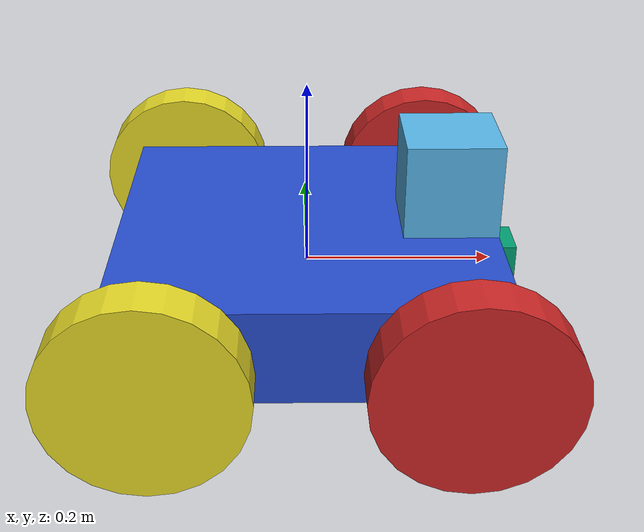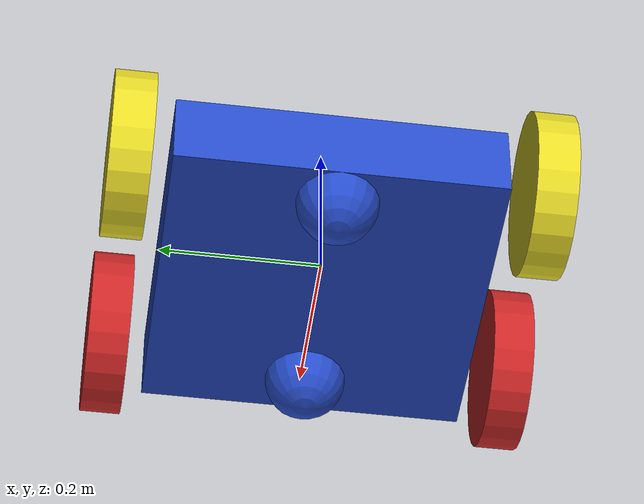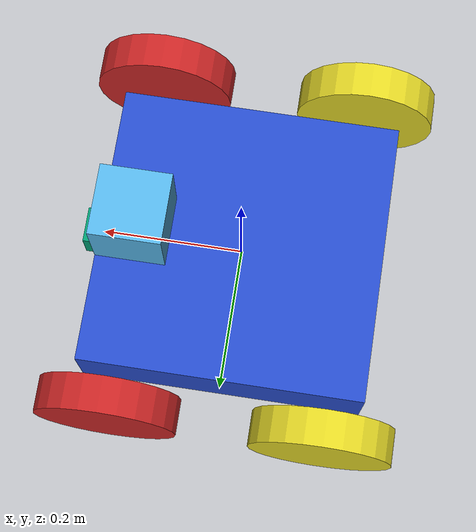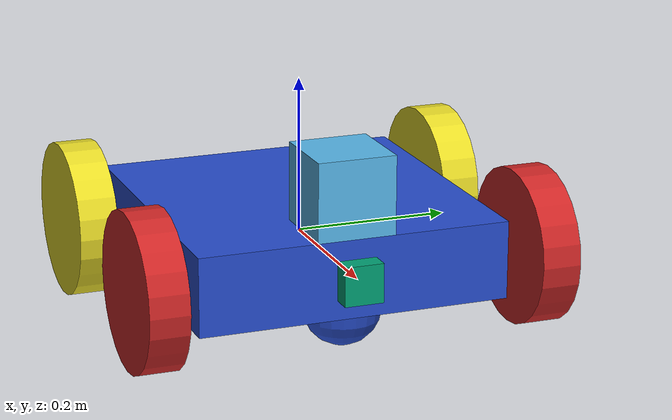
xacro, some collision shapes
<?xml version='1.0'?>

<robot name="my_robot" xmlns:xacro="http://www.ros.org/wiki/xacro">
<xacro:include filename="$(find my_robot)/urdf/my_robot.gazebo" />

  <link name="robot_footprint"></link>

  <joint name="robot_footprint_joint" type="fixed">
    <origin xyz="0 0 0" rpy="0 0 0" />
    <parent link="robot_footprint"/>
    <child link="chassis" />
  </joint>

  <joint name="camera_joint" type="fixed">
    <origin xyz="0.2 0 0" rpy="0 0 0" />
    <axis xyz="0 1 0" rpy="0 0 0"/>
    <parent link="chassis"/>
    <child link="camera" />
  </joint>

  <joint name="hokuyo_joint" type="fixed">
    <origin xyz="0.15 0 0.1" rpy="0 0 0" />
    <axis xyz="0 1 0" rpy="0 0 0"/>
    <parent link="chassis"/>
    <child link="hokuyo" />
  </joint>

  <link name='hokuyo'>
    <pose>0 0 0 0 0 0</pose>
    <inertial>
      <mass value="1e-5"/>
      <origin xyz="0 0 0" rpy=" 0 0 0"/>
      <inertia
          ixx="1e-6" ixy="0" ixz="0"
          iyy="1e-6" iyz="0"
          izz="1e-6"
      />
    </inertial>
    <collision name='collision'>
      <origin xyz="0 0 0" rpy=" 0 0 0"/>
      <geometry>
        <box size="0.1 0.1 0.1"/>
      </geometry>
    </collision>
    <visual name='visual'>
      <origin xyz="0 0 0" rpy=" 0 0 0"/>
      <geometry>
        <mesh filename="package://my_robot/meshes/hokuyo.dae"/>
      </geometry>
    </visual>
  </link>

  <link name='camera'>
    <pose>0 0 0 0 0 0</pose>
    <inertial>
      <mass value="0.1"/>
      <origin xyz="0.05 0.05 0.05" rpy=" 0 0 0"/>
      <inertia
          ixx="1e-6" ixy="0" ixz="0"
          iyy="1e-6" iyz="0"
          izz="1e-6"
      />
    </inertial>
    <collision name='collision'>
      <origin xyz="0 0 0" rpy=" 0 0 0"/>
      <geometry>
        <box size="0.05 0.05 0.05"/>
      </geometry>
    </collision>
    <visual name='visual'>
      <origin xyz="0 0 0" rpy=" 0 0 0"/>
      <geometry>
        <box size="0.05 0.05 0.05"/>
      </geometry>
    </visual>
  </link>

  <joint name="left_wheel_hinge" type="continuous">
    <origin xyz="0.15 0.25 0" rpy="0 0 0" />
    <parent link="chassis"/>
    <child link="left_wheel" />
    <axis xyz="0 1 0" rpy="0 0 0"/>
    <limit effort="10000" velocity="1000"/>
    <dynamics damping="1.0" friction="1.0"/>
  </joint>

  <joint name="right_wheel_hinge" type="continuous">
    <origin xyz="0.15 -0.25 0" rpy="0 0 0" />
    <parent link="chassis"/>
    <child link="right_wheel" />
    <axis xyz="0 1 0" rpy="0 0 0"/>
    <limit effort="10000" velocity="1000"/>
    <dynamics damping="1.0" friction="1.0"/>
  </joint>

  <joint name="left_back_wheel_hinge" type="continuous">
    <origin xyz="-0.15 0.25 0" rpy="0 0 0" />
    <parent link="chassis"/>
    <child link="left_back_wheel" />
    <axis xyz="0 1 0" rpy="0 0 0"/>
    <limit effort="10000" velocity="1000"/>
    <dynamics damping="1.0" friction="1.0"/>
  </joint>

  <joint name="right_back_wheel_hinge" type="continuous">
    <origin xyz="-0.15 -0.25 0" rpy="0 0 0" />
    <parent link="chassis"/>
    <child link="right_back_wheel" />
    <axis xyz="0 1 0" rpy="0 0 0"/>
    <limit effort="10000" velocity="1000"/>
    <dynamics damping="1.0" friction="1.0"/>
  </joint>

  <link name='right_wheel'>
    <pos>0 0 0 0 0 0</pos>
    <inertial>
      <mass value="5.0"/>
      <inertia
          ixx="0.1" ixy="0" ixz="0"
          iyy="0.1" iyz="0"
          izz="0.1"
      />
    </inertial>
    <collision name='collision'>
      <origin xyz="0 0 0" rpy=" 0 1.5707 1.5707"/>
      <geometry>
        <cylinder radius="0.1" length="0.05"/>
      </geometry>
    </collision>
    <visual name='right_wheel_visual'>
      <origin xyz="0 0 0" rpy=" 0 1.5707 1.5707"/>
      <geometry>
        <cylinder radius="0.1" length="0.05"/>
      </geometry>
    </visual>
  </link>

  <link name='left_wheel'>
    <pos>0 0 0 0 0 0</pos>
    <inertial>
      <mass value="5.0"/>
      <inertia
          ixx="0.1" ixy="0" ixz="0"
          iyy="0.1" iyz="0"
          izz="0.1"
      />
    </inertial>
    <collision name='collision'>
      <origin xyz="0 0 0" rpy=" 0 1.5707 1.5707"/>
      <geometry>
        <cylinder radius="0.1" length="0.05"/>
      </geometry>
    </collision>
    <visual name='left_wheel_visual'>
      <origin xyz="0 0 0" rpy=" 0 1.5707 1.5707"/>
      <geometry>
        <cylinder radius="0.1" length="0.05"/>
      </geometry>
    </visual>
  </link>

  <link name='right_back_wheel'>
    <pos>0 0 0 0 0 0</pos>
    <inertial>
      <mass value="5.0"/>
      <inertia
          ixx="0.1" ixy="0" ixz="0"
          iyy="0.1" iyz="0"
          izz="0.1"
      />
    </inertial>
    <collision name='collision'>
      <origin xyz="0 0 0" rpy=" 0 1.5707 1.5707"/>
      <geometry>
        <cylinder radius="0.1" length="0.05"/>
      </geometry>
    </collision>
    <visual name='right_back_wheel_visual'>
      <origin xyz="0 0 0" rpy=" 0 1.5707 1.5707"/>
      <geometry>
        <cylinder radius="0.1" length="0.05"/>
      </geometry>
    </visual>
  </link>

  <link name='left_back_wheel'>
    <pos>0 0 0 0 0 0</pos>
    <inertial>
      <mass value="5.0"/>
      <inertia
          ixx="0.1" ixy="0" ixz="0"
          iyy="0.1" iyz="0"
          izz="0.1"
      />
    </inertial>
    <collision name='collision'>
      <origin xyz="0 0 0" rpy=" 0 1.5707 1.5707"/>
      <geometry>
        <cylinder radius="0.1" length="0.05"/>
      </geometry>
    </collision>
    <visual name='left_back_wheel_visual'>
      <origin xyz="0 0 0" rpy=" 0 1.5707 1.5707"/>
      <geometry>
        <cylinder radius="0.1" length="0.05"/>
      </geometry>
    </visual>
  </link>

  <link name='chassis'>
    <pose>0 0 0.1 0 0 0</pose>

    <inertial>
      <mass value="15.0"/>
      <origin xyz="0.0 0 0" rpy=" 0 0 0"/>
      <inertia
          ixx="0.1" ixy="0" ixz="0"
          iyy="0.1" iyz="0"
          izz="0.1"
      />
    </inertial>

    <collision name='collision'>
      <origin xyz="0 0 0" rpy=" 0 0 0"/>
      <geometry>
        <box size=".4 .4 .1"/>
      </geometry>
    </collision>

    <visual name='chassis_visual'>
      <origin xyz="0 0 0" rpy=" 0 0 0"/>
      <geometry>
        <box size=".4 .4 .1"/>
      </geometry>
    </visual>

    <collision name='back_caster_collision'>
      <origin xyz="-0.15 0 -0.05" rpy=" 0 0 0"/>
      <geometry>
        <sphere radius="0.0499"/>
      </geometry>
    </collision>

    <visual name='back_caster_visual'>
      <origin xyz="-0.15 0 -0.05" rpy=" 0 0 0"/>
      <geometry>
        <sphere radius="0.05"/>
      </geometry>
    </visual>

    <collision name='front_caster_collision'>
      <origin xyz="0.15 0 -0.05" rpy=" 0 0 0"/>
      <geometry>
        <sphere radius="0.0499"/>
      </geometry>
    </collision>

    <visual name='front_caster_visual'>
      <origin xyz="0.15 0 -0.05" rpy=" 0 0 0"/>
      <geometry>
        <sphere radius="0.05"/>
      </geometry>
    </visual>

  </link>

</robot>
